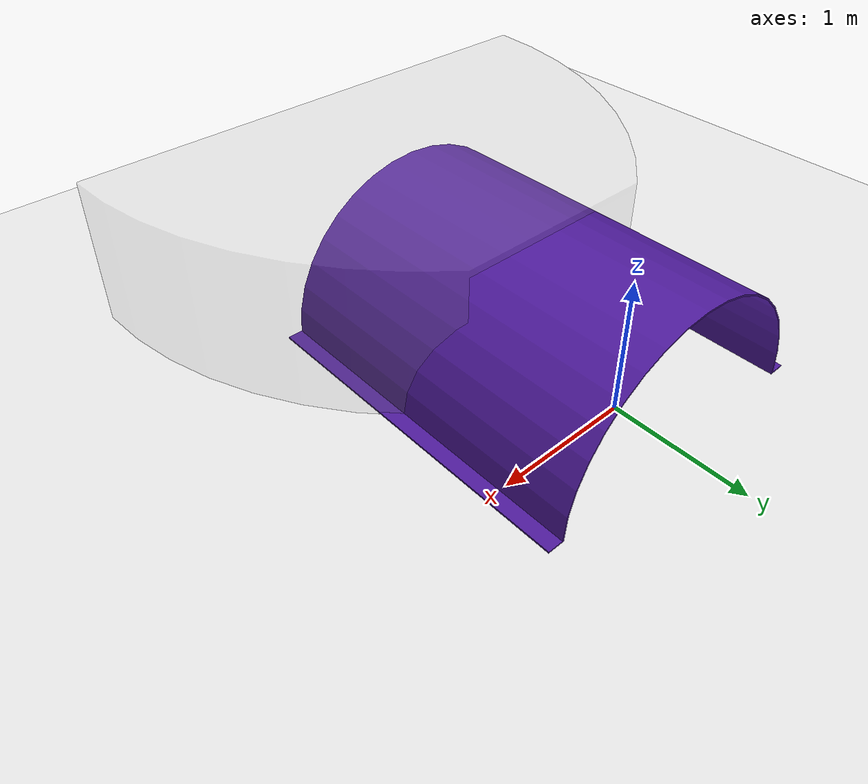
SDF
<sdf version="1.6">
 <world name="default">
  <light name="sun" type="directional">
   <pose>0 0 10 0 -0 0</pose>
   <diffuse>0.8 0.8 0.8 1</diffuse>
   <specular>0.2 0.2 0.2 1</specular>
   <attenuation>
    <range>1000</range>
    <constant>0.9</constant>
    <linear>0.01</linear>
    <quadratic>0.001</quadratic>
   </attenuation>
   <direction>-0.5 0.1 -0.9</direction>
  </light>
  <model name="ground_plane">
   <static>1</static>
   <link name="link">
    <collision name="collision">
     <geometry><plane><normal>0 0 1</normal><size>100 100</size></plane></geometry>
     <surface>
      <contact><collide_bitmask>65535</collide_bitmask></contact>
      <friction><ode><mu>100</mu><mu2>50</mu2></ode></friction>
     </surface>
    </collision>
    <visual name="visual">
     <cast_shadows>0</cast_shadows>
     <geometry><plane><normal>0 0 1</normal><size>100 100</size></plane></geometry>
     <material>
      <script><uri>file://media/materials/scripts/gazebo.material</uri><name>Gazebo/Grey</name></script>
     </material>
    </visual>
   </link>
  </model>
  <gravity>0 0 -9.8</gravity>
  <magnetic_field>6e-06 2.3e-05 -4.2e-05</magnetic_field>
  <atmosphere type="adiabatic"/>
  <physics name="default_physics" default="0" type="ode">
   <max_step_size>0.001</max_step_size>
   <real_time_factor>1</real_time_factor>
   <real_time_update_rate>1000</real_time_update_rate>
  </physics>
  <scene><ambient>0.4 0.4 0.4 1</ambient><background>0.7 0.7 0.7 1</background><shadows>1</shadows></scene>
  <spherical_coordinates>
   <surface_model>EARTH_WGS84</surface_model>
   <latitude_deg>0</latitude_deg>
   <longitude_deg>0</longitude_deg>
   <elevation>0</elevation>
   <heading_deg>0</heading_deg>
  </spherical_coordinates>
  <model name="tubestraight0325">
   <link name="base_link">
    <inertial>
     <pose>1.25 -0.000987 0.62711 0 -0 0</pose>
     <mass>106.93</mass>
     <inertia><ixx>78.399</ixx><ixy>0</ixy><ixz>-0</ixz><iyy>69.372</iyy><iyz>0</iyz><izz>120.41</izz></inertia>
    </inertial>
    <visual name="base_link_visual">
     <geometry>
      <mesh><scale>1 1 1</scale><uri>/home/hyh/catkin_ws/src/tubestraight0304/meshes/base_link.STL</uri></mesh>
     </geometry>
     <material>
      <script><name>Gazebo/Indigo</name><uri>file://media/materials/scripts/gazebo.material</uri></script>
      <shader type="pixel"><normal_map>__default__</normal_map></shader>
     </material>
    </visual>
    <collision name="base_link_collision">
     <geometry>
      <mesh><uri>/home/hyh/catkin_ws/src/tubestraight0304/meshes/base_link.STL</uri><scale>1 1 1</scale></mesh>
     </geometry>
     <surface>
      <friction>
       <ode><mu>100</mu><mu2>100</mu2><fdir1>0 1 0</fdir1><slip1>0</slip1><slip2>0</slip2></ode>
       <torsional>
        <coefficient>1</coefficient>
        <patch_radius>0</patch_radius>
        <surface_radius>0</surface_radius>
        <use_patch_radius>1</use_patch_radius>
        <ode><slip>0</slip></ode>
       </torsional>
      </friction>
      <bounce><restitution_coefficient>0</restitution_coefficient><threshold>1e+06</threshold></bounce>
      <contact>
       <collide_without_contact>0</collide_without_contact>
       <collide_without_contact_bitmask>1</collide_without_contact_bitmask>
       <collide_bitmask>1</collide_bitmask>
       <ode>
        <soft_cfm>0</soft_cfm>
        <soft_erp>0.2</soft_erp>
        <kp>1e+13</kp>
        <kd>1</kd>
        <max_vel>0.01</max_vel>
        <min_depth>0</min_depth>
       </ode>
       <bullet>
        <split_impulse>1</split_impulse>
        <split_impulse_penetration_threshold>-0.01</split_impulse_penetration_threshold>
        <soft_cfm>0</soft_cfm>
        <soft_erp>0.2</soft_erp>
        <kp>1e+13</kp>
        <kd>1</kd>
       </bullet>
      </contact>
     </surface>
    </collision>
   </link>
   <joint name="fixed" type="fixed"><child>base_link</child><parent>world</parent></joint>
   <link name="Link_wing">
    <pose>0 0 1.0635 0 -0 0</pose>
    <inertial>
     <pose>1.25 0 0.070408 0 -0 0</pose>
     <mass>14174</mass>
     <inertia>
      <ixx>9617.8</ixx>
      <ixy>1062.1</ixy>
      <ixz>-0</ixz>
      <iyy>13416</iyy>
      <iyz>-0</iyz>
      <izz>12598</izz>
     </inertia>
    </inertial>
    <visual name="Link_wing_visual">
     <geometry>
      <mesh><scale>1 1 1</scale><uri>/home/hyh/catkin_ws/src/tubestraight0304/meshes/Link_wing.STL</uri></mesh>
     </geometry>
     <material>
      <script><name>Gazebo/GreyTransparent</name><uri>file://media/materials/scripts/gazebo.material</uri></script>
      <shader type="pixel"><normal_map>__default__</normal_map></shader>
      <ambient>0.5 0.5 0.5 1</ambient>
      <diffuse>0.5 0.5 0.5 1</diffuse>
      <specular>0 0 0 1</specular>
      <emissive>0 0 0 1</emissive>
     </material>
     <transparency>0.97</transparency>
    </visual>
    <collision name="Link_wing_collision">
     <geometry>
      <mesh><uri>/home/hyh/catkin_ws/src/tubestraight0304/meshes/Link_wing.STL</uri><scale>1 1 1</scale></mesh>
     </geometry>
     <surface>
      <friction>
       <ode><mu>50</mu><mu2>50</mu2><fdir1>0 1 0</fdir1><slip1>0</slip1><slip2>0</slip2></ode>
       <torsional>
        <coefficient>1</coefficient>
        <patch_radius>10</patch_radius>
        <surface_radius>10.03</surface_radius>
        <use_patch_radius>1</use_patch_radius>
        <ode><slip>0</slip></ode>
       </torsional>
      </friction>
      <bounce><restitution_coefficient>0</restitution_coefficient><threshold>10000</threshold></bounce>
      <contact>
       <collide_without_contact>0</collide_without_contact>
       <collide_without_contact_bitmask>1</collide_without_contact_bitmask>
       <collide_bitmask>1</collide_bitmask>
       <ode>
        <soft_cfm>10</soft_cfm>
        <soft_erp>10</soft_erp>
        <kp>1e+07</kp>
        <kd>1</kd>
        <max_vel>0.01</max_vel>
        <min_depth>0</min_depth>
       </ode>
       <bullet>
        <split_impulse>1</split_impulse>
        <split_impulse_penetration_threshold>-0.01</split_impulse_penetration_threshold>
        <soft_cfm>10</soft_cfm>
        <soft_erp>10</soft_erp>
        <kp>1e+07</kp>
        <kd>1</kd>
       </bullet>
      </contact>
     </surface>
    </collision>
   </link>
   <joint name="Joint_wing" type="revolute">
    <parent>base_link</parent>
    <child>Link_wing</child>
    <axis>
     <xyz>1 0 0</xyz>
     <use_parent_model_frame>0</use_parent_model_frame>
     <limit><lower>-1e+16</lower><upper>1e+16</upper><effort>-1</effort><velocity>-1</velocity></limit>
     <dynamics>
      <spring_reference>0</spring_reference>
      <spring_stiffness>0</spring_stiffness>
      <damping>0</damping>
      <friction>0</friction>
     </dynamics>
    </axis>
    <physics>
     <ode><limit><cfm>0</cfm><erp>0.2</erp></limit><suspension><cfm>0</cfm><erp>0.2</erp></suspension></ode>
    </physics>
   </joint>
   <static>0</static>
   <pose>0 -2 0.012004 0 -0 1.5708</pose>
  </model>
 </world>
</sdf>
